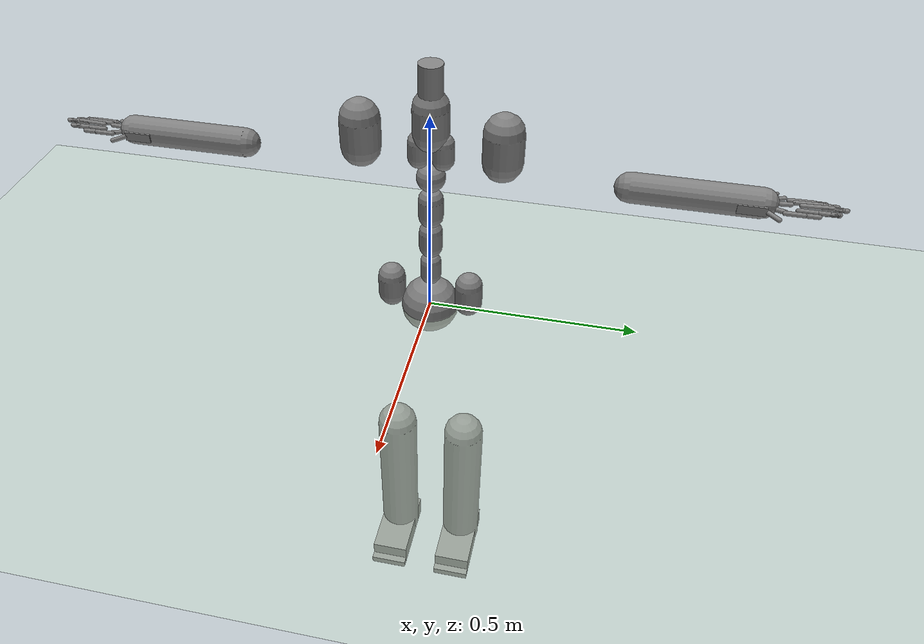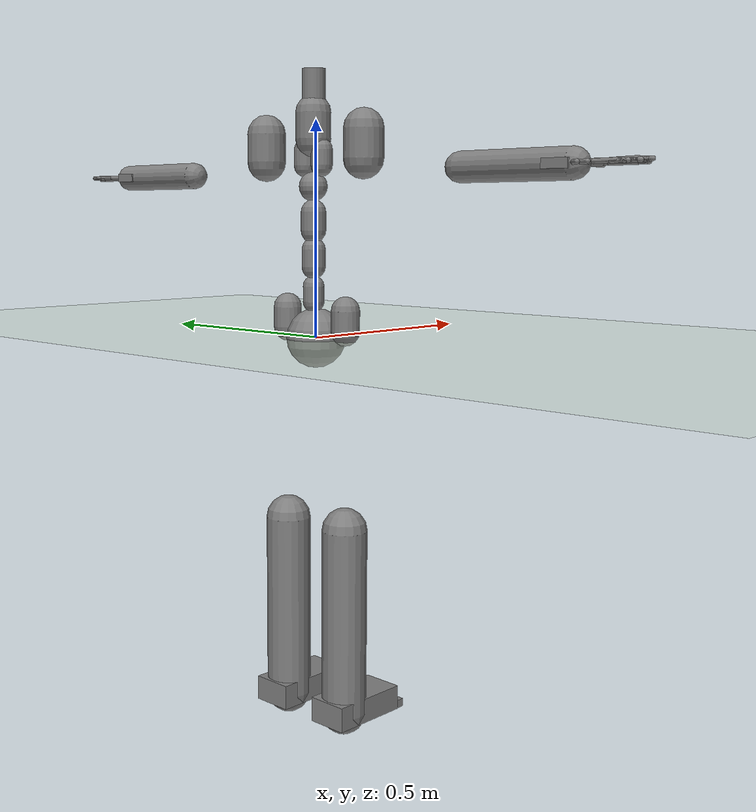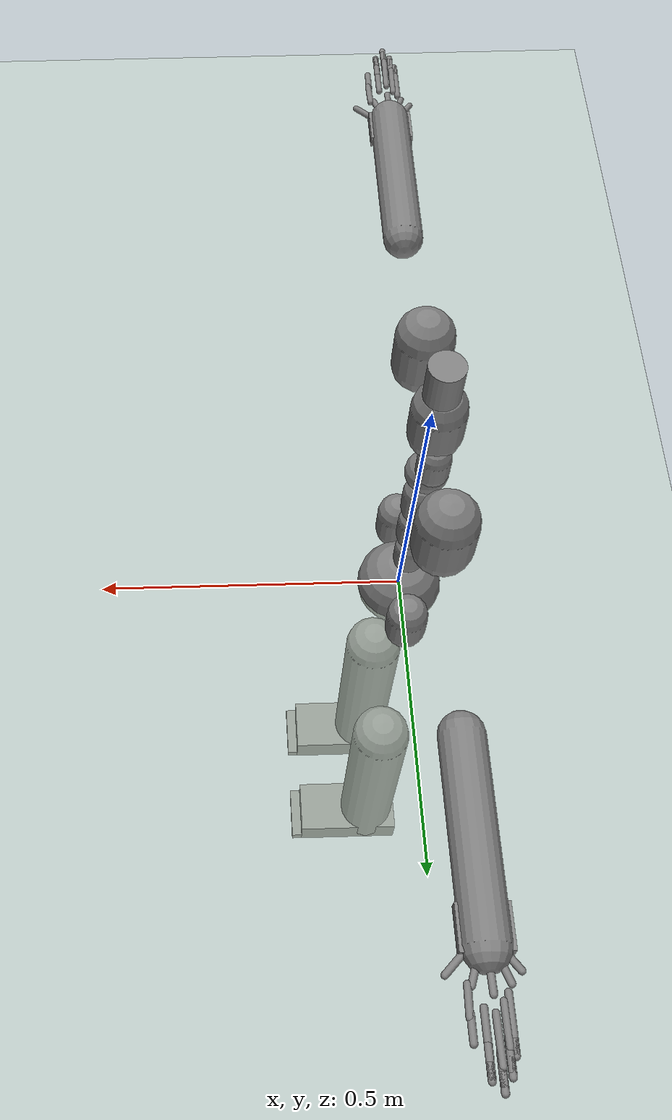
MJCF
<?xml version="1.0" ?>
<mujoco model="humanoid">
  <compiler coordinate="local"/>
  <statistic extent="2" center="0 0 1"/>
  <option timestep="0.00555"/>
  <default>
    <motor ctrlrange="-1 1" ctrllimited="true"/>
    <geom type="capsule" condim="1" friction="1.0 0.05 0.05" solimp=".9 .99 .003" solref=".015 1"/>
    <joint type="hinge" damping="0.1" stiffness="5" armature=".007" limited="true" solimplimit="0 .99 .01"/>
    <site size=".04" group="3"/>
  </default>
  <asset>
    <texture type="skybox" builtin="gradient" rgb1=".4 .5 .6" rgb2="0 0 0" width="100" height="100"/>
    <texture builtin="flat" height="1278" mark="cross" markrgb="1 1 1" name="texgeom" random="0.01" rgb1="0.8 0.6 0.4" rgb2="0.8 0.6 0.4" type="cube" width="127"/>
    <texture builtin="checker" height="100" name="texplane" rgb1="0 0 0" rgb2="0.8 0.8 0.8" type="2d" width="100"/>
    <material name="MatPlane" reflectance="0.5" shininess="1" specular="1" texrepeat="60 60" texture="texplane"/>
    <material name="geom" texture="texgeom" texuniform="true"/>
  </asset>
  <worldbody>
    <light cutoff="100" diffuse="1 1 1" dir="-0 0 -1.3" directional="true" exponent="1" pos="0 0 1.3" specular=".1 .1 .1"/>
    <geom conaffinity="1" condim="3" name="floor" pos="0 0 0" rgba="0.8 0.9 0.8 1" size="100 100 .2" type="plane" material="MatPlane"/>
    <body name="pHipOrigin" pos="0 0 0">
      <freejoint name="pHipOrigin"/>
      <geom type="sphere" contype="1" conaffinity="1" density="4629.6296296296305" size="0.06984" pos="0.0000 0.0000 -0.0000"/>
      <body name="jL5S1" pos="-0.00787041 0 0.07083349">
        <geom type="capsule" contype="1" conaffinity="1" density="1000" fromto="0 0 0.01425 0 0 0.04989" size="0.02494"/>
        <joint name="jL5S1_x" type="hinge" pos="0 0 0" axis="1 0 0" stiffness="500" damping="500" armature="0.02" range="-180.0000 180.0000"/>
        <joint name="jL5S1_y" type="hinge" pos="0 0 0" axis="0 1 0" stiffness="500" damping="500" armature="0.02" range="-180.0000 180.0000"/>
        <joint name="jL5S1_z" type="hinge" pos="0 0 0" axis="0 0 1" stiffness="500" damping="500" armature="0.02" range="-180.0000 180.0000"/>
        <body name="jL4L3" pos="0 0 0.07917343">
          <geom type="capsule" contype="1" conaffinity="1" density="1000" fromto="0 0 0.01583 0 0 0.05542" size="0.02771"/>
          <joint name="jL4L3_x" type="hinge" pos="0 0 0" axis="1 0 0" stiffness="500" damping="500" armature="0.02" range="-180.0000 180.0000"/>
          <joint name="jL4L3_y" type="hinge" pos="0 0 0" axis="0 1 0" stiffness="500" damping="500" armature="0.02" range="-180.0000 180.0000"/>
          <joint name="jL4L3_z" type="hinge" pos="0 0 0" axis="0 0 1" stiffness="500" damping="500" armature="0.02" range="-180.0000 180.0000"/>
          <body name="jL1T12" pos="-0.00064086 0 0.08306667">
            <geom type="capsule" contype="1" conaffinity="1" density="1000" fromto="0 0 0.01661 0 0 0.05815" size="0.02907"/>
            <joint name="jL1T12_x" type="hinge" pos="0 0 0" axis="1 0 0" stiffness="500" damping="500" armature="0.02" range="-180.0000 180.0000"/>
            <joint name="jL1T12_y" type="hinge" pos="0 0 0" axis="0 1 0" stiffness="500" damping="500" armature="0.02" range="-180.0000 180.0000"/>
            <joint name="jL1T12_z" type="hinge" pos="0 0 0" axis="0 0 1" stiffness="500" damping="500" armature="0.02" range="-180.0000 180.0000"/>
            <body name="jT9T8" pos="-0.00064135 0 0.08296934">
              <geom type="sphere" contype="1" conaffinity="1" density="1000" size="0.03319" pos="0.000 0.0000 0.033189"/>
              <joint name="jT9T8_x" type="hinge" pos="0 0 0" axis="1 0 0" stiffness="500" damping="500" armature="0.02" range="-180.0000 180.0000"/>
              <joint name="jT9T8_y" type="hinge" pos="0 0 0" axis="0 1 0" stiffness="500" damping="500" armature="0.02" range="-180.0000 180.0000"/>
              <joint name="jT9T8_z" type="hinge" pos="0 0 0" axis="0 0 1" stiffness="500" damping="500" armature="0.02" range="-180.0000 180.0000"/>
              <body name="jT1C7" pos="0 0 0.11661401">
                <geom type="capsule" contype="1" conaffinity="1" density="1000" fromto="0 0 0.02332 0 0 0.08163" size="0.04081"/>
                <joint name="jT1C7_x" type="hinge" pos="0 0 0" axis="1 0 0" stiffness="500" damping="500" armature="0.02" range="-180.0000 180.0000"/>
                <joint name="jT1C7_y" type="hinge" pos="0 0 0" axis="0 1 0" stiffness="500" damping="500" armature="0.02" range="-180.0000 180.0000"/>
                <joint name="jT1C7_z" type="hinge" pos="0 0 0" axis="0 0 1" stiffness="500" damping="500" armature="0.02" range="-180.0000 180.0000"/>
                <body name="jC1Head" pos="0.00105500 0 0.08942446">
                  <geom type="cylinder" contype="1" conaffinity="1" density="1000" fromto="0 0 0 0 0 0.08943" size="0.02683"/>
                  <joint name="jC1Head_x" type="hinge" pos="0 0 0" axis="1 0 0" stiffness="500" damping="500" armature="0.02" range="-180.0000 180.0000"/>
                  <joint name="jC1Head_y" type="hinge" pos="0 0 0" axis="0 1 0" stiffness="500" damping="500" armature="0.02" range="-180.0000 180.0000"/>
                  <joint name="jC1Head_z" type="hinge" pos="0 0 0" axis="0 0 1" stiffness="500" damping="500" armature="0.02" range="-180.0000 180.0000"/>
                </body>
              </body>
              <body name="jRightT4Shoulder" pos="0 -0.02701748 0.06587455">
                <geom type="capsule" contype="1" conaffinity="1" density="1000" fromto="0 0 0.01424 0 0 0.04984" size="0.02492"/>
                <joint name="jRightT4Shoulder_x" type="hinge" pos="0 0 0" axis="1 0 0" stiffness="500" damping="500" armature="0.02" range="-180.0000 180.0000"/>
                <joint name="jRightT4Shoulder_y" type="hinge" pos="0 0 0" axis="0 1 0" stiffness="500" damping="500" armature="0.02" range="-180.0000 180.0000"/>
                <joint name="jRightT4Shoulder_z" type="hinge" pos="0 0 0" axis="0 0 1" stiffness="500" damping="500" armature="0.02" range="-180.0000 180.0000"/>
                <body name="jRightShoulder" pos="0 -0.12938206 0">
                  <geom type="capsule" contype="1" conaffinity="1" density="1000" fromto="0 0 0.02588 0 0 0.09057" size="0.04528"/>
                  <joint name="jRightShoulder_x" type="hinge" pos="0 0 0" axis="1 0 0" stiffness="500" damping="500" armature="0.02" range="-180.0000 180.0000"/>
                  <joint name="jRightShoulder_y" type="hinge" pos="0 0 0" axis="0 1 0" stiffness="500" damping="500" armature="0.02" range="-180.0000 180.0000"/>
                  <joint name="jRightShoulder_z" type="hinge" pos="0 0 0" axis="0 0 1" stiffness="500" damping="500" armature="0.02" range="-180.0000 180.0000"/>
                  <body name="jRightElbow" pos="0 -0.26952463 0">
                    <geom type="capsule" contype="1" conaffinity="1" density="1000" fromto="0 0 0 0.00000000 -0.26952463 0.00000000" size="0.03234"/>
                    <joint name="jRightElbow_x" type="hinge" pos="0 0 0" axis="1 0 0" stiffness="500" damping="500" armature="0.02" range="-180.0000 180.0000"/>
                    <joint name="jRightElbow_y" type="hinge" pos="0 0 0" axis="0 1 0" stiffness="500" damping="500" armature="0.02" range="-180.0000 180.0000"/>
                    <joint name="jRightElbow_z" type="hinge" pos="0 0 0" axis="0 0 1" stiffness="500" damping="500" armature="0.02" range="-180.0000 180.0000"/>
                    <body name="jRightWrist" pos="0.00009974 -0.24782105 0">
                      <geom density="1000" type="box" pos="0 0 0" size="0.035 0.03 0.01" quat="1.0000 0.0000 0.0000 0.0000"/>
                      <joint name="jRightWrist_x" type="hinge" pos="0 0 0" axis="1 0 0" stiffness="500" damping="500" armature="0.02" range="-180.0000 180.0000"/>
                      <joint name="jRightWrist_y" type="hinge" pos="0 0 0" axis="0 1 0" stiffness="500" damping="500" armature="0.02" range="-180.0000 180.0000"/>
                      <joint name="jRightWrist_z" type="hinge" pos="0 0 0" axis="0 0 1" stiffness="500" damping="500" armature="0.02" range="-180.0000 180.0000"/>
                      <body name="jRightFirstCMC" pos="0.02718432 -0.02605770 -0.00123107">
                        <geom type="capsule" contype="1" conaffinity="1" density="1000" fromto="0 0 0 0.02718432 -0.02605770 -0.00123107" size="0.005"/>
                        <joint name="jRightFirstCMC_x" type="hinge" pos="0 0 0" axis="1 0 0" stiffness="500" damping="500" armature="0.02" range="-180.0000 180.0000"/>
                        <joint name="jRightFirstCMC_y" type="hinge" pos="0 0 0" axis="0 1 0" stiffness="500" damping="500" armature="0.02" range="-180.0000 180.0000"/>
                        <joint name="jRightFirstCMC_z" type="hinge" pos="0 0 0" axis="0 0 1" stiffness="500" damping="500" armature="0.02" range="-180.0000 180.0000"/>
                        <body name="jRightFirstMCP" pos="0.00135433 -0.03821817 0.00080755">
                          <geom type="capsule" contype="1" conaffinity="1" density="1000" fromto="0 0 0 0.00135433 -0.03821817 0.00080755" size="0.005"/>
                          <joint name="jRightFirstMCP_x" type="hinge" pos="0 0 0" axis="1 0 0" stiffness="500" damping="500" armature="0.02" range="-180.0000 180.0000"/>
                          <joint name="jRightFirstMCP_y" type="hinge" pos="0 0 0" axis="0 1 0" stiffness="500" damping="500" armature="0.02" range="-180.0000 180.0000"/>
                          <joint name="jRightFirstMCP_z" type="hinge" pos="0 0 0" axis="0 0 1" stiffness="500" damping="500" armature="0.02" range="-180.0000 180.0000"/>
                          <body name="jRightIP" pos="0 -0.03357258 0">
                            <geom type="capsule" contype="1" conaffinity="1" density="1000" fromto="0 0 0 0.00000000 -0.03357258 0.00000000" size="0.005"/>
                            <joint name="jRightIP_x" type="hinge" pos="0 0 0" axis="1 0 0" stiffness="500" damping="500" armature="0.02" range="-180.0000 180.0000"/>
                            <joint name="jRightIP_y" type="hinge" pos="0 0 0" axis="0 1 0" stiffness="500" damping="500" armature="0.02" range="-180.0000 180.0000"/>
                            <joint name="jRightIP_z" type="hinge" pos="0 0 0" axis="0 0 1" stiffness="500" damping="500" armature="0.02" range="-180.0000 180.0000"/>
                          </body>
                        </body>
                      </body>
                      <body name="jRightSecondCMC" pos="0.01153945 -0.03371460 -0.00058806">
                        <geom type="capsule" contype="1" conaffinity="1" density="1000" fromto="0 0 0 0.01153945 -0.03371460 -0.00058806" size="0.005"/>
                        <joint name="jRightSecondCMC_x" type="hinge" pos="0 0 0" axis="1 0 0" stiffness="500" damping="500" armature="0.02" range="-180.0000 180.0000"/>
                        <joint name="jRightSecondCMC_y" type="hinge" pos="0 0 0" axis="0 1 0" stiffness="500" damping="500" armature="0.02" range="-180.0000 180.0000"/>
                        <joint name="jRightSecondCMC_z" type="hinge" pos="0 0 0" axis="0 0 1" stiffness="500" damping="500" armature="0.02" range="-180.0000 180.0000"/>
                        <body name="jRightSecondMCP" pos="-0.00036596 -0.05836865 -0.00060548">
                          <geom type="capsule" contype="1" conaffinity="1" density="1000" fromto="0 0 0 -0.00036596 -0.05836865 -0.00060548" size="0.005"/>
                          <joint name="jRightSecondMCP_x" type="hinge" pos="0 0 0" axis="1 0 0" stiffness="500" damping="500" armature="0.02" range="-180.0000 180.0000"/>
                          <joint name="jRightSecondMCP_y" type="hinge" pos="0 0 0" axis="0 1 0" stiffness="500" damping="500" armature="0.02" range="-180.0000 180.0000"/>
                          <joint name="jRightSecondMCP_z" type="hinge" pos="0 0 0" axis="0 0 1" stiffness="500" damping="500" armature="0.02" range="-180.0000 180.0000"/>
                          <body name="jRightSecondPIP" pos="0 -0.04060539 0">
                            <geom type="capsule" contype="1" conaffinity="1" density="1000" fromto="0 0 0 0.00000000 -0.04060539 0.00000000" size="0.005"/>
                            <joint name="jRightSecondPIP_x" type="hinge" pos="0 0 0" axis="1 0 0" stiffness="500" damping="500" armature="0.02" range="-180.0000 180.0000"/>
                            <joint name="jRightSecondPIP_y" type="hinge" pos="0 0 0" axis="0 1 0" stiffness="500" damping="500" armature="0.02" range="-180.0000 180.0000"/>
                            <joint name="jRightSecondPIP_z" type="hinge" pos="0 0 0" axis="0 0 1" stiffness="500" damping="500" armature="0.02" range="-180.0000 180.0000"/>
                            <body name="jRightSecondDIP" pos="0 -0.01983708 0">
                              <geom type="capsule" contype="1" conaffinity="1" density="1000" fromto="0 0 0 0.00000000 -0.01983708 0.00000000" size="0.005"/>
                              <joint name="jRightSecondDIP_x" type="hinge" pos="0 0 0" axis="1 0 0" stiffness="500" damping="500" armature="0.02" range="-180.0000 180.0000"/>
                              <joint name="jRightSecondDIP_y" type="hinge" pos="0 0 0" axis="0 1 0" stiffness="500" damping="500" armature="0.02" range="-180.0000 180.0000"/>
                              <joint name="jRightSecondDIP_z" type="hinge" pos="0 0 0" axis="0 0 1" stiffness="500" damping="500" armature="0.02" range="-180.0000 180.0000"/>
                            </body>
                          </body>
                        </body>
                      </body>
                      <body name="jRightThirdCMC" pos="-0.00072275 -0.03908487 0.00164319">
                        <geom type="capsule" contype="1" conaffinity="1" density="1000" fromto="0 0 0 -0.00072275 -0.03908487 0.00164319" size="0.005"/>
                        <joint name="jRightThirdCMC_x" type="hinge" pos="0 0 0" axis="1 0 0" stiffness="500" damping="500" armature="0.02" range="-180.0000 180.0000"/>
                        <joint name="jRightThirdCMC_y" type="hinge" pos="0 0 0" axis="0 1 0" stiffness="500" damping="500" armature="0.02" range="-180.0000 180.0000"/>
                        <joint name="jRightThirdCMC_z" type="hinge" pos="0 0 0" axis="0 0 1" stiffness="500" damping="500" armature="0.02" range="-180.0000 180.0000"/>
                        <body name="jRightThirdMCP" pos="-0.00072406 -0.05998887 0.00163207">
                          <geom type="capsule" contype="1" conaffinity="1" density="1000" fromto="0 0 0 -0.00072406 -0.05998887 0.00163207" size="0.005"/>
                          <joint name="jRightThirdMCP_x" type="hinge" pos="0 0 0" axis="1 0 0" stiffness="500" damping="500" armature="0.02" range="-180.0000 180.0000"/>
                          <joint name="jRightThirdMCP_y" type="hinge" pos="0 0 0" axis="0 1 0" stiffness="500" damping="500" armature="0.02" range="-180.0000 180.0000"/>
                          <joint name="jRightThirdMCP_z" type="hinge" pos="0 0 0" axis="0 0 1" stiffness="500" damping="500" armature="0.02" range="-180.0000 180.0000"/>
                          <body name="jRightThirdPIP" pos="0 -0.04112494 0">
                            <geom type="capsule" contype="1" conaffinity="1" density="1000" fromto="0 0 0 0.00000000 -0.04112494 0.00000000" size="0.005"/>
                            <joint name="jRightThirdPIP_x" type="hinge" pos="0 0 0" axis="1 0 0" stiffness="500" damping="500" armature="0.02" range="-180.0000 180.0000"/>
                            <joint name="jRightThirdPIP_y" type="hinge" pos="0 0 0" axis="0 1 0" stiffness="500" damping="500" armature="0.02" range="-180.0000 180.0000"/>
                            <joint name="jRightThirdPIP_z" type="hinge" pos="0 0 0" axis="0 0 1" stiffness="500" damping="500" armature="0.02" range="-180.0000 180.0000"/>
                            <body name="jRightThirdDIP" pos="0 -0.02348156 0">
                              <geom type="capsule" contype="1" conaffinity="1" density="1000" fromto="0 0 0 0.00000000 -0.02348156 0.00000000" size="0.005"/>
                              <joint name="jRightThirdDIP_x" type="hinge" pos="0 0 0" axis="1 0 0" stiffness="500" damping="500" armature="0.02" range="-180.0000 180.0000"/>
                              <joint name="jRightThirdDIP_y" type="hinge" pos="0 0 0" axis="0 1 0" stiffness="500" damping="500" armature="0.02" range="-180.0000 180.0000"/>
                              <joint name="jRightThirdDIP_z" type="hinge" pos="0 0 0" axis="0 0 1" stiffness="500" damping="500" armature="0.02" range="-180.0000 180.0000"/>
                            </body>
                          </body>
                        </body>
                      </body>
                      <body name="jRightFourthCMC" pos="-0.01199957 -0.03342079 0.00078667">
                        <geom type="capsule" contype="1" conaffinity="1" density="1000" fromto="0 0 0 -0.01199957 -0.03342079 0.00078667" size="0.005"/>
                        <joint name="jRightFourthCMC_x" type="hinge" pos="0 0 0" axis="1 0 0" stiffness="500" damping="500" armature="0.02" range="-180.0000 180.0000"/>
                        <joint name="jRightFourthCMC_y" type="hinge" pos="0 0 0" axis="0 1 0" stiffness="500" damping="500" armature="0.02" range="-180.0000 180.0000"/>
                        <joint name="jRightFourthCMC_z" type="hinge" pos="0 0 0" axis="0 0 1" stiffness="500" damping="500" armature="0.02" range="-180.0000 180.0000"/>
                        <body name="jRightFourthMCP" pos="-0.00038448 -0.05269627 0.00082790">
                          <geom type="capsule" contype="1" conaffinity="1" density="1000" fromto="0 0 0 -0.00038448 -0.05269627 0.00082790" size="0.005"/>
                          <joint name="jRightFourthMCP_x" type="hinge" pos="0 0 0" axis="1 0 0" stiffness="500" damping="500" armature="0.02" range="-180.0000 180.0000"/>
                          <joint name="jRightFourthMCP_y" type="hinge" pos="0 0 0" axis="0 1 0" stiffness="500" damping="500" armature="0.02" range="-180.0000 180.0000"/>
                          <joint name="jRightFourthMCP_z" type="hinge" pos="0 0 0" axis="0 0 1" stiffness="500" damping="500" armature="0.02" range="-180.0000 180.0000"/>
                          <body name="jRightFourthPIP" pos="0 -0.03950550 0">
                            <geom type="capsule" contype="1" conaffinity="1" density="1000" fromto="0 0 0 0.00000000 -0.03950550 0.00000000" size="0.005"/>
                            <joint name="jRightFourthPIP_x" type="hinge" pos="0 0 0" axis="1 0 0" stiffness="500" damping="500" armature="0.02" range="-180.0000 180.0000"/>
                            <joint name="jRightFourthPIP_y" type="hinge" pos="0 0 0" axis="0 1 0" stiffness="500" damping="500" armature="0.02" range="-180.0000 180.0000"/>
                            <joint name="jRightFourthPIP_z" type="hinge" pos="0 0 0" axis="0 0 1" stiffness="500" damping="500" armature="0.02" range="-180.0000 180.0000"/>
                            <body name="jRightFourthDIP" pos="0 -0.02236672 0">
                              <geom type="capsule" contype="1" conaffinity="1" density="1000" fromto="0 0 0 0.00000000 -0.02236672 0.00000000" size="0.005"/>
                              <joint name="jRightFourthDIP_x" type="hinge" pos="0 0 0" axis="1 0 0" stiffness="500" damping="500" armature="0.02" range="-180.0000 180.0000"/>
                              <joint name="jRightFourthDIP_y" type="hinge" pos="0 0 0" axis="0 1 0" stiffness="500" damping="500" armature="0.02" range="-180.0000 180.0000"/>
                              <joint name="jRightFourthDIP_z" type="hinge" pos="0 0 0" axis="0 0 1" stiffness="500" damping="500" armature="0.02" range="-180.0000 180.0000"/>
                            </body>
                          </body>
                        </body>
                      </body>
                      <body name="jRightFifthCMC" pos="-0.01890416 -0.02634080 0.00051962">
                        <geom type="capsule" contype="1" conaffinity="1" density="1000" fromto="0 0 0 -0.01890416 -0.02634080 0.00051962" size="0.005"/>
                        <joint name="jRightFifthCMC_x" type="hinge" pos="0 0 0" axis="1 0 0" stiffness="500" damping="500" armature="0.02" range="-180.0000 180.0000"/>
                        <joint name="jRightFifthCMC_y" type="hinge" pos="0 0 0" axis="0 1 0" stiffness="500" damping="500" armature="0.02" range="-180.0000 180.0000"/>
                        <joint name="jRightFifthCMC_z" type="hinge" pos="0 0 0" axis="0 0 1" stiffness="500" damping="500" armature="0.02" range="-180.0000 180.0000"/>
                        <body name="jRightFifthMCP" pos="-0.00000736 -0.04985693 0.00068609">
                          <geom type="capsule" contype="1" conaffinity="1" density="1000" fromto="0 0 0 -0.00000736 -0.04985693 0.00068609" size="0.005"/>
                          <joint name="jRightFifthMCP_x" type="hinge" pos="0 0 0" axis="1 0 0" stiffness="500" damping="500" armature="0.02" range="-180.0000 180.0000"/>
                          <joint name="jRightFifthMCP_y" type="hinge" pos="0 0 0" axis="0 1 0" stiffness="500" damping="500" armature="0.02" range="-180.0000 180.0000"/>
                          <joint name="jRightFifthMCP_z" type="hinge" pos="0 0 0" axis="0 0 1" stiffness="500" damping="500" armature="0.02" range="-180.0000 180.0000"/>
                          <body name="jRightFifthPIP" pos="0 -0.03509658 0">
                            <geom type="capsule" contype="1" conaffinity="1" density="1000" fromto="0 0 0 0.00000000 -0.03509658 0.00000000" size="0.005"/>
                            <joint name="jRightFifthPIP_x" type="hinge" pos="0 0 0" axis="1 0 0" stiffness="500" damping="500" armature="0.02" range="-180.0000 180.0000"/>
                            <joint name="jRightFifthPIP_y" type="hinge" pos="0 0 0" axis="0 1 0" stiffness="500" damping="500" armature="0.02" range="-180.0000 180.0000"/>
                            <joint name="jRightFifthPIP_z" type="hinge" pos="0 0 0" axis="0 0 1" stiffness="500" damping="500" armature="0.02" range="-180.0000 180.0000"/>
                            <body name="jRightFifthDIP" pos="0 -0.01817212 0">
                              <geom type="capsule" contype="1" conaffinity="1" density="1000" fromto="0 0 0 0.00000000 -0.01817212 0.00000000" size="0.005"/>
                              <joint name="jRightFifthDIP_x" type="hinge" pos="0 0 0" axis="1 0 0" stiffness="500" damping="500" armature="0.02" range="-180.0000 180.0000"/>
                              <joint name="jRightFifthDIP_y" type="hinge" pos="0 0 0" axis="0 1 0" stiffness="500" damping="500" armature="0.02" range="-180.0000 180.0000"/>
                              <joint name="jRightFifthDIP_z" type="hinge" pos="0 0 0" axis="0 0 1" stiffness="500" damping="500" armature="0.02" range="-180.0000 180.0000"/>
                            </body>
                          </body>
                        </body>
                      </body>
                    </body>
                  </body>
                </body>
              </body>
              <body name="jLeftT4Shoulder" pos="0 0.02719374 0.06630430">
                <geom type="capsule" contype="1" conaffinity="1" density="1000" fromto="0 0 0.01433 0 0 0.05016" size="0.02508"/>
                <joint name="jLeftT4Shoulder_x" type="hinge" pos="0 0 0" axis="1 0 0" stiffness="500" damping="500" armature="0.02" range="-180.0000 180.0000"/>
                <joint name="jLeftT4Shoulder_y" type="hinge" pos="0 0 0" axis="0 1 0" stiffness="500" damping="500" armature="0.02" range="-180.0000 180.0000"/>
                <joint name="jLeftT4Shoulder_z" type="hinge" pos="0 0 0" axis="0 0 1" stiffness="500" damping="500" armature="0.02" range="-180.0000 180.0000"/>
                <body name="jLeftShoulder" pos="0 0.12956539 0">
                  <geom type="capsule" contype="1" conaffinity="1" density="1000" fromto="0 0 0.02591 0 0 0.09070" size="0.04535"/>
                  <joint name="jLeftShoulder_x" type="hinge" pos="0 0 0" axis="1 0 0" stiffness="500" damping="500" armature="0.02" range="-180.0000 180.0000"/>
                  <joint name="jLeftShoulder_y" type="hinge" pos="0 0 0" axis="0 1 0" stiffness="500" damping="500" armature="0.02" range="-180.0000 180.0000"/>
                  <joint name="jLeftShoulder_z" type="hinge" pos="0 0 0" axis="0 0 1" stiffness="500" damping="500" armature="0.02" range="-180.0000 180.0000"/>
                  <body name="jLeftElbow" pos="0 0.27030092 0">
                    <geom type="capsule" contype="1" conaffinity="1" density="1000" fromto="0 0 0 0.00000000 0.27030092 0.00000000" size="0.03244"/>
                    <joint name="jLeftElbow_x" type="hinge" pos="0 0 0" axis="1 0 0" stiffness="500" damping="500" armature="0.02" range="-180.0000 180.0000"/>
                    <joint name="jLeftElbow_y" type="hinge" pos="0 0 0" axis="0 1 0" stiffness="500" damping="500" armature="0.02" range="-180.0000 180.0000"/>
                    <joint name="jLeftElbow_z" type="hinge" pos="0 0 0" axis="0 0 1" stiffness="500" damping="500" armature="0.02" range="-180.0000 180.0000"/>
                    <body name="jLeftWrist" pos="0.00009984 0.24805251 0">
                      <geom density="1000" type="box" pos="0 0 0" size="0.035 0.03 0.01" quat="1.0000 0.0000 0.0000 0.0000"/>
                      <joint name="jLeftWrist_x" type="hinge" pos="0 0 0" axis="1 0 0" stiffness="500" damping="500" armature="0.02" range="-180.0000 180.0000"/>
                      <joint name="jLeftWrist_y" type="hinge" pos="0 0 0" axis="0 1 0" stiffness="500" damping="500" armature="0.02" range="-180.0000 180.0000"/>
                      <joint name="jLeftWrist_z" type="hinge" pos="0 0 0" axis="0 0 1" stiffness="500" damping="500" armature="0.02" range="-180.0000 180.0000"/>
                      <body name="jLeftFirstCMC" pos="0.02660705 0.02666988 -0.00119084">
                        <geom type="capsule" contype="1" conaffinity="1" density="1000" fromto="0 0 0 0.02660705 0.02666988 -0.00119084" size="0.005"/>
                        <joint name="jLeftFirstCMC_x" type="hinge" pos="0 0 0" axis="1 0 0" stiffness="500" damping="500" armature="0.02" range="-180.0000 180.0000"/>
                        <joint name="jLeftFirstCMC_y" type="hinge" pos="0 0 0" axis="0 1 0" stiffness="500" damping="500" armature="0.02" range="-180.0000 180.0000"/>
                        <joint name="jLeftFirstCMC_z" type="hinge" pos="0 0 0" axis="0 0 1" stiffness="500" damping="500" armature="0.02" range="-180.0000 180.0000"/>
                        <body name="jLeftFirstMCP" pos="0.00134128 0.03821731 0.00078699">
                          <geom type="capsule" contype="1" conaffinity="1" density="1000" fromto="0 0 0 0.00134128 0.03821731 0.00078699" size="0.005"/>
                          <joint name="jLeftFirstMCP_x" type="hinge" pos="0 0 0" axis="1 0 0" stiffness="500" damping="500" armature="0.02" range="-180.0000 180.0000"/>
                          <joint name="jLeftFirstMCP_y" type="hinge" pos="0 0 0" axis="0 1 0" stiffness="500" damping="500" armature="0.02" range="-180.0000 180.0000"/>
                          <joint name="jLeftFirstMCP_z" type="hinge" pos="0 0 0" axis="0 0 1" stiffness="500" damping="500" armature="0.02" range="-180.0000 180.0000"/>
                          <body name="jLeftIP" pos="0 0.03357258 0">
                            <geom type="capsule" contype="1" conaffinity="1" density="1000" fromto="0 0 0 0.00000000 0.03357258 0.00000000" size="0.005"/>
                            <joint name="jLeftIP_x" type="hinge" pos="0 0 0" axis="1 0 0" stiffness="500" damping="500" armature="0.02" range="-180.0000 180.0000"/>
                            <joint name="jLeftIP_y" type="hinge" pos="0 0 0" axis="0 1 0" stiffness="500" damping="500" armature="0.02" range="-180.0000 180.0000"/>
                            <joint name="jLeftIP_z" type="hinge" pos="0 0 0" axis="0 0 1" stiffness="500" damping="500" armature="0.02" range="-180.0000 180.0000"/>
                          </body>
                        </body>
                      </body>
                      <body name="jLeftSecondCMC" pos="0.01167236 0.03365257 -0.00059292">
                        <geom type="capsule" contype="1" conaffinity="1" density="1000" fromto="0 0 0 0.01167236 0.03365257 -0.00059292" size="0.005"/>
                        <joint name="jLeftSecondCMC_x" type="hinge" pos="0 0 0" axis="1 0 0" stiffness="500" damping="500" armature="0.02" range="-180.0000 180.0000"/>
                        <joint name="jLeftSecondCMC_y" type="hinge" pos="0 0 0" axis="0 1 0" stiffness="500" damping="500" armature="0.02" range="-180.0000 180.0000"/>
                        <joint name="jLeftSecondCMC_z" type="hinge" pos="0 0 0" axis="0 0 1" stiffness="500" damping="500" armature="0.02" range="-180.0000 180.0000"/>
                        <body name="jLeftSecondMCP" pos="-0.00031910 0.05836985 -0.00061296">
                          <geom type="capsule" contype="1" conaffinity="1" density="1000" fromto="0 0 0 -0.00031910 0.05836985 -0.00061296" size="0.005"/>
                          <joint name="jLeftSecondMCP_x" type="hinge" pos="0 0 0" axis="1 0 0" stiffness="500" damping="500" armature="0.02" range="-180.0000 180.0000"/>
                          <joint name="jLeftSecondMCP_y" type="hinge" pos="0 0 0" axis="0 1 0" stiffness="500" damping="500" armature="0.02" range="-180.0000 180.0000"/>
                          <joint name="jLeftSecondMCP_z" type="hinge" pos="0 0 0" axis="0 0 1" stiffness="500" damping="500" armature="0.02" range="-180.0000 180.0000"/>
                          <body name="jLeftSecondPIP" pos="0 0.04060539 0">
                            <geom type="capsule" contype="1" conaffinity="1" density="1000" fromto="0 0 0 0.00000000 0.04060539 0.00000000" size="0.005"/>
                            <joint name="jLeftSecondPIP_x" type="hinge" pos="0 0 0" axis="1 0 0" stiffness="500" damping="500" armature="0.02" range="-180.0000 180.0000"/>
                            <joint name="jLeftSecondPIP_y" type="hinge" pos="0 0 0" axis="0 1 0" stiffness="500" damping="500" armature="0.02" range="-180.0000 180.0000"/>
                            <joint name="jLeftSecondPIP_z" type="hinge" pos="0 0 0" axis="0 0 1" stiffness="500" damping="500" armature="0.02" range="-180.0000 180.0000"/>
                            <body name="jLeftSecondDIP" pos="0 0.01983708 0">
                              <geom type="capsule" contype="1" conaffinity="1" density="1000" fromto="0 0 0 0.00000000 0.01983708 0.00000000" size="0.005"/>
                              <joint name="jLeftSecondDIP_x" type="hinge" pos="0 0 0" axis="1 0 0" stiffness="500" damping="500" armature="0.02" range="-180.0000 180.0000"/>
                              <joint name="jLeftSecondDIP_y" type="hinge" pos="0 0 0" axis="0 1 0" stiffness="500" damping="500" armature="0.02" range="-180.0000 180.0000"/>
                              <joint name="jLeftSecondDIP_z" type="hinge" pos="0 0 0" axis="0 0 1" stiffness="500" damping="500" armature="0.02" range="-180.0000 180.0000"/>
                            </body>
                          </body>
                        </body>
                      </body>
                      <body name="jLeftThirdCMC" pos="-0.00072700 0.03908838 0.00158841">
                        <geom type="capsule" contype="1" conaffinity="1" density="1000" fromto="0 0 0 -0.00072700 0.03908838 0.00158841" size="0.005"/>
                        <joint name="jLeftThirdCMC_x" type="hinge" pos="0 0 0" axis="1 0 0" stiffness="500" damping="500" armature="0.02" range="-180.0000 180.0000"/>
                        <joint name="jLeftThirdCMC_y" type="hinge" pos="0 0 0" axis="0 1 0" stiffness="500" damping="500" armature="0.02" range="-180.0000 180.0000"/>
                        <joint name="jLeftThirdCMC_z" type="hinge" pos="0 0 0" axis="0 0 1" stiffness="500" damping="500" armature="0.02" range="-180.0000 180.0000"/>
                        <body name="jLeftThirdMCP" pos="-0.00072991 0.05999004 0.00159926">
                          <geom type="capsule" contype="1" conaffinity="1" density="1000" fromto="0 0 0 -0.00072991 0.05999004 0.00159926" size="0.005"/>
                          <joint name="jLeftThirdMCP_x" type="hinge" pos="0 0 0" axis="1 0 0" stiffness="500" damping="500" armature="0.02" range="-180.0000 180.0000"/>
                          <joint name="jLeftThirdMCP_y" type="hinge" pos="0 0 0" axis="0 1 0" stiffness="500" damping="500" armature="0.02" range="-180.0000 180.0000"/>
                          <joint name="jLeftThirdMCP_z" type="hinge" pos="0 0 0" axis="0 0 1" stiffness="500" damping="500" armature="0.02" range="-180.0000 180.0000"/>
                          <body name="jLeftThirdPIP" pos="0 0.04112494 0">
                            <geom type="capsule" contype="1" conaffinity="1" density="1000" fromto="0 0 0 0.00000000 0.04112494 0.00000000" size="0.005"/>
                            <joint name="jLeftThirdPIP_x" type="hinge" pos="0 0 0" axis="1 0 0" stiffness="500" damping="500" armature="0.02" range="-180.0000 180.0000"/>
                            <joint name="jLeftThirdPIP_y" type="hinge" pos="0 0 0" axis="0 1 0" stiffness="500" damping="500" armature="0.02" range="-180.0000 180.0000"/>
                            <joint name="jLeftThirdPIP_z" type="hinge" pos="0 0 0" axis="0 0 1" stiffness="500" damping="500" armature="0.02" range="-180.0000 180.0000"/>
                            <body name="jLeftThirdDIP" pos="0 0.02348156 0">
                              <geom type="capsule" contype="1" conaffinity="1" density="1000" fromto="0 0 0 0.00000000 0.02348156 0.00000000" size="0.005"/>
                              <joint name="jLeftThirdDIP_x" type="hinge" pos="0 0 0" axis="1 0 0" stiffness="500" damping="500" armature="0.02" range="-180.0000 180.0000"/>
                              <joint name="jLeftThirdDIP_y" type="hinge" pos="0 0 0" axis="0 1 0" stiffness="500" damping="500" armature="0.02" range="-180.0000 180.0000"/>
                              <joint name="jLeftThirdDIP_z" type="hinge" pos="0 0 0" axis="0 0 1" stiffness="500" damping="500" armature="0.02" range="-180.0000 180.0000"/>
                            </body>
                          </body>
                        </body>
                      </body>
                      <body name="jLeftFourthCMC" pos="-0.01243988 0.03324984 0.00083977">
                        <geom type="capsule" contype="1" conaffinity="1" density="1000" fromto="0 0 0 -0.01243988 0.03324984 0.00083977" size="0.005"/>
                        <joint name="jLeftFourthCMC_x" type="hinge" pos="0 0 0" axis="1 0 0" stiffness="500" damping="500" armature="0.02" range="-180.0000 180.0000"/>
                        <joint name="jLeftFourthCMC_y" type="hinge" pos="0 0 0" axis="0 1 0" stiffness="500" damping="500" armature="0.02" range="-180.0000 180.0000"/>
                        <joint name="jLeftFourthCMC_z" type="hinge" pos="0 0 0" axis="0 0 1" stiffness="500" damping="500" armature="0.02" range="-180.0000 180.0000"/>
                        <body name="jLeftFourthMCP" pos="-0.00041347 0.05269325 0.00087560">
                          <geom type="capsule" contype="1" conaffinity="1" density="1000" fromto="0 0 0 -0.00041347 0.05269325 0.00087560" size="0.005"/>
                          <joint name="jLeftFourthMCP_x" type="hinge" pos="0 0 0" axis="1 0 0" stiffness="500" damping="500" armature="0.02" range="-180.0000 180.0000"/>
                          <joint name="jLeftFourthMCP_y" type="hinge" pos="0 0 0" axis="0 1 0" stiffness="500" damping="500" armature="0.02" range="-180.0000 180.0000"/>
                          <joint name="jLeftFourthMCP_z" type="hinge" pos="0 0 0" axis="0 0 1" stiffness="500" damping="500" armature="0.02" range="-180.0000 180.0000"/>
                          <body name="jLeftFourthPIP" pos="0 0.03950550 0">
                            <geom type="capsule" contype="1" conaffinity="1" density="1000" fromto="0 0 0 0.00000000 0.03950550 0.00000000" size="0.005"/>
                            <joint name="jLeftFourthPIP_x" type="hinge" pos="0 0 0" axis="1 0 0" stiffness="500" damping="500" armature="0.02" range="-180.0000 180.0000"/>
                            <joint name="jLeftFourthPIP_y" type="hinge" pos="0 0 0" axis="0 1 0" stiffness="500" damping="500" armature="0.02" range="-180.0000 180.0000"/>
                            <joint name="jLeftFourthPIP_z" type="hinge" pos="0 0 0" axis="0 0 1" stiffness="500" damping="500" armature="0.02" range="-180.0000 180.0000"/>
                            <body name="jLeftFourthDIP" pos="0 0.02236672 0">
                              <geom type="capsule" contype="1" conaffinity="1" density="1000" fromto="0 0 0 0.00000000 0.02236672 0.00000000" size="0.005"/>
                              <joint name="jLeftFourthDIP_x" type="hinge" pos="0 0 0" axis="1 0 0" stiffness="500" damping="500" armature="0.02" range="-180.0000 180.0000"/>
                              <joint name="jLeftFourthDIP_y" type="hinge" pos="0 0 0" axis="0 1 0" stiffness="500" damping="500" armature="0.02" range="-180.0000 180.0000"/>
                              <joint name="jLeftFourthDIP_z" type="hinge" pos="0 0 0" axis="0 0 1" stiffness="500" damping="500" armature="0.02" range="-180.0000 180.0000"/>
                            </body>
                          </body>
                        </body>
                      </body>
                      <body name="jLeftFifthCMC" pos="-0.01947684 0.02592437 0.00052797">
                        <geom type="capsule" contype="1" conaffinity="1" density="1000" fromto="0 0 0 -0.01947684 0.02592437 0.00052797" size="0.005"/>
                        <joint name="jLeftFifthCMC_x" type="hinge" pos="0 0 0" axis="1 0 0" stiffness="500" damping="500" armature="0.02" range="-180.0000 180.0000"/>
                        <joint name="jLeftFifthCMC_y" type="hinge" pos="0 0 0" axis="0 1 0" stiffness="500" damping="500" armature="0.02" range="-180.0000 180.0000"/>
                        <joint name="jLeftFifthCMC_z" type="hinge" pos="0 0 0" axis="0 0 1" stiffness="500" damping="500" armature="0.02" range="-180.0000 180.0000"/>
                        <body name="jLeftFifthMCP" pos="-0.00001414 0.04985557 0.00071739">
                          <geom type="capsule" contype="1" conaffinity="1" density="1000" fromto="0 0 0 -0.00001414 0.04985557 0.00071739" size="0.005"/>
                          <joint name="jLeftFifthMCP_x" type="hinge" pos="0 0 0" axis="1 0 0" stiffness="500" damping="500" armature="0.02" range="-180.0000 180.0000"/>
                          <joint name="jLeftFifthMCP_y" type="hinge" pos="0 0 0" axis="0 1 0" stiffness="500" damping="500" armature="0.02" range="-180.0000 180.0000"/>
                          <joint name="jLeftFifthMCP_z" type="hinge" pos="0 0 0" axis="0 0 1" stiffness="500" damping="500" armature="0.02" range="-180.0000 180.0000"/>
                          <body name="jLeftFifthPIP" pos="0 0.03509658 0">
                            <geom type="capsule" contype="1" conaffinity="1" density="1000" fromto="0 0 0 0.00000000 0.03509658 0.00000000" size="0.005"/>
                            <joint name="jLeftFifthPIP_x" type="hinge" pos="0 0 0" axis="1 0 0" stiffness="500" damping="500" armature="0.02" range="-180.0000 180.0000"/>
                            <joint name="jLeftFifthPIP_y" type="hinge" pos="0 0 0" axis="0 1 0" stiffness="500" damping="500" armature="0.02" range="-180.0000 180.0000"/>
                            <joint name="jLeftFifthPIP_z" type="hinge" pos="0 0 0" axis="0 0 1" stiffness="500" damping="500" armature="0.02" range="-180.0000 180.0000"/>
                            <body name="jLeftFifthDIP" pos="0 0.01817212 0">
                              <geom type="capsule" contype="1" conaffinity="1" density="1000" fromto="0 0 0 0.00000000 0.01817212 0.00000000" size="0.005"/>
                              <joint name="jLeftFifthDIP_x" type="hinge" pos="0 0 0" axis="1 0 0" stiffness="500" damping="500" armature="0.02" range="-180.0000 180.0000"/>
                              <joint name="jLeftFifthDIP_y" type="hinge" pos="0 0 0" axis="0 1 0" stiffness="500" damping="500" armature="0.02" range="-180.0000 180.0000"/>
                              <joint name="jLeftFifthDIP_z" type="hinge" pos="0 0 0" axis="0 0 1" stiffness="500" damping="500" armature="0.02" range="-180.0000 180.0000"/>
                            </body>
                          </body>
                        </body>
                      </body>
                    </body>
                  </body>
                </body>
              </body>
            </body>
          </body>
        </body>
      </body>
      <body name="jRightHip" pos="-0.00016020 -0.09506907 0.00144217">
        <geom type="capsule" contype="1" conaffinity="1" density="1000" fromto="0 0 0.01902 0 0 0.06656" size="0.03328"/>
        <joint name="jRightHip_x" type="hinge" pos="0 0 0" axis="1 0 0" stiffness="500" damping="500" armature="0.02" range="-180.0000 180.0000"/>
        <joint name="jRightHip_y" type="hinge" pos="0 0 0" axis="0 1 0" stiffness="500" damping="500" armature="0.02" range="-180.0000 180.0000"/>
        <joint name="jRightHip_z" type="hinge" pos="0 0 0" axis="0 0 1" stiffness="500" damping="500" armature="0.02" range="-180.0000 180.0000"/>
        <body name="jRightKnee" pos="0.00005371 0 -0.45044741">
          <geom type="capsule" contype="1" conaffinity="1" density="1000" fromto="0 0 0 0.00005371 0.00000000 -0.45044741" size="0.05405"/>
          <joint name="jRightKnee_x" type="hinge" pos="0 0 0" axis="1 0 0" stiffness="500" damping="500" armature="0.02" range="-180.0000 180.0000"/>
          <joint name="jRightKnee_y" type="hinge" pos="0 0 0" axis="0 1 0" stiffness="500" damping="500" armature="0.02" range="-180.0000 180.0000"/>
          <joint name="jRightKnee_z" type="hinge" pos="0 0 0" axis="0 0 1" stiffness="500" damping="500" armature="0.02" range="-180.0000 180.0000"/>
          <body name="jRightAnkle" pos="0.00046479 0 -0.41163184">
            <geom density="1000" type="box" pos="0.04 0. -0.03" size="0.1 0.05 0.03" quat="1.0 0 0 0"/>
            <joint name="jRightAnkle_x" type="hinge" pos="0 0 0" axis="1 0 0" stiffness="500" damping="500" armature="0.02" range="-180.0000 180.0000"/>
            <joint name="jRightAnkle_y" type="hinge" pos="0 0 0" axis="0 1 0" stiffness="500" damping="500" armature="0.02" range="-180.0000 180.0000"/>
            <joint name="jRightAnkle_z" type="hinge" pos="0 0 0" axis="0 0 1" stiffness="500" damping="500" armature="0.02" range="-180.0000 180.0000"/>
            <body name="jRightBallFoot" pos="0.14987361 0 -0.06875617">
              <geom density="1000" type="box" pos="0 0 0.02" size="0.01 0.05 0.01" quat="1.0 0 0 0"/>
              <joint name="jRightBallFoot_x" type="hinge" pos="0 0 0" axis="1 0 0" stiffness="500" damping="500" armature="0.02" range="-180.0000 180.0000"/>
              <joint name="jRightBallFoot_y" type="hinge" pos="0 0 0" axis="0 1 0" stiffness="500" damping="500" armature="0.02" range="-180.0000 180.0000"/>
              <joint name="jRightBallFoot_z" type="hinge" pos="0 0 0" axis="0 0 1" stiffness="500" damping="500" armature="0.02" range="-180.0000 180.0000"/>
            </body>
          </body>
        </body>
      </body>
      <body name="jLeftHip" pos="-0.00015830 0.09517248 0.00142464">
        <geom type="capsule" contype="1" conaffinity="1" density="1000" fromto="0 0 0.01904 0 0 0.06663" size="0.03331"/>
        <joint name="jLeftHip_x" type="hinge" pos="0 0 0" axis="1 0 0" stiffness="500" damping="500" armature="0.02" range="-180.0000 180.0000"/>
        <joint name="jLeftHip_y" type="hinge" pos="0 0 0" axis="0 1 0" stiffness="500" damping="500" armature="0.02" range="-180.0000 180.0000"/>
        <joint name="jLeftHip_z" type="hinge" pos="0 0 0" axis="0 0 1" stiffness="500" damping="500" armature="0.02" range="-180.0000 180.0000"/>
        <body name="jLeftKnee" pos="0.00005371 0 -0.45044806">
          <geom type="capsule" contype="1" conaffinity="1" density="1000" fromto="0 0 0 0.00005371 0.00000000 -0.45044806" size="0.05405"/>
          <joint name="jLeftKnee_x" type="hinge" pos="0 0 0" axis="1 0 0" stiffness="500" damping="500" armature="0.02" range="-180.0000 180.0000"/>
          <joint name="jLeftKnee_y" type="hinge" pos="0 0 0" axis="0 1 0" stiffness="500" damping="500" armature="0.02" range="-180.0000 180.0000"/>
          <joint name="jLeftKnee_z" type="hinge" pos="0 0 0" axis="0 0 1" stiffness="500" damping="500" armature="0.02" range="-180.0000 180.0000"/>
          <body name="jLeftAnkle" pos="0.00046479 0 -0.41163184">
            <geom density="1000" type="box" pos="0.04 0. -0.03" size="0.1 0.05 0.03" quat="1.0 0 0 0"/>
            <joint name="jLeftAnkle_x" type="hinge" pos="0 0 0" axis="1 0 0" stiffness="500" damping="500" armature="0.02" range="-180.0000 180.0000"/>
            <joint name="jLeftAnkle_y" type="hinge" pos="0 0 0" axis="0 1 0" stiffness="500" damping="500" armature="0.02" range="-180.0000 180.0000"/>
            <joint name="jLeftAnkle_z" type="hinge" pos="0 0 0" axis="0 0 1" stiffness="500" damping="500" armature="0.02" range="-180.0000 180.0000"/>
            <body name="jLeftBallFoot" pos="0.14987362 0 -0.06875618">
              <geom density="1000" type="box" pos="0 0 0.02" size="0.01 0.05 0.01" quat="1.0 0 0 0"/>
              <joint name="jLeftBallFoot_x" type="hinge" pos="0 0 0" axis="1 0 0" stiffness="500" damping="500" armature="0.02" range="-180.0000 180.0000"/>
              <joint name="jLeftBallFoot_y" type="hinge" pos="0 0 0" axis="0 1 0" stiffness="500" damping="500" armature="0.02" range="-180.0000 180.0000"/>
              <joint name="jLeftBallFoot_z" type="hinge" pos="0 0 0" axis="0 0 1" stiffness="500" damping="500" armature="0.02" range="-180.0000 180.0000"/>
            </body>
          </body>
        </body>
      </body>
    </body>
  </worldbody>
  <actuator>
    <motor name="jL5S1_x" joint="jL5S1_x" gear="500"/>
    <motor name="jL5S1_y" joint="jL5S1_y" gear="500"/>
    <motor name="jL5S1_z" joint="jL5S1_z" gear="500"/>
    <motor name="jL4L3_x" joint="jL4L3_x" gear="500"/>
    <motor name="jL4L3_y" joint="jL4L3_y" gear="500"/>
    <motor name="jL4L3_z" joint="jL4L3_z" gear="500"/>
    <motor name="jL1T12_x" joint="jL1T12_x" gear="500"/>
    <motor name="jL1T12_y" joint="jL1T12_y" gear="500"/>
    <motor name="jL1T12_z" joint="jL1T12_z" gear="500"/>
    <motor name="jT9T8_x" joint="jT9T8_x" gear="500"/>
    <motor name="jT9T8_y" joint="jT9T8_y" gear="500"/>
    <motor name="jT9T8_z" joint="jT9T8_z" gear="500"/>
    <motor name="jT1C7_x" joint="jT1C7_x" gear="500"/>
    <motor name="jT1C7_y" joint="jT1C7_y" gear="500"/>
    <motor name="jT1C7_z" joint="jT1C7_z" gear="500"/>
    <motor name="jC1Head_x" joint="jC1Head_x" gear="500"/>
    <motor name="jC1Head_y" joint="jC1Head_y" gear="500"/>
    <motor name="jC1Head_z" joint="jC1Head_z" gear="500"/>
    <motor name="jRightT4Shoulder_x" joint="jRightT4Shoulder_x" gear="500"/>
    <motor name="jRightT4Shoulder_y" joint="jRightT4Shoulder_y" gear="500"/>
    <motor name="jRightT4Shoulder_z" joint="jRightT4Shoulder_z" gear="500"/>
    <motor name="jRightShoulder_x" joint="jRightShoulder_x" gear="500"/>
    <motor name="jRightShoulder_y" joint="jRightShoulder_y" gear="500"/>
    <motor name="jRightShoulder_z" joint="jRightShoulder_z" gear="500"/>
    <motor name="jRightElbow_x" joint="jRightElbow_x" gear="500"/>
    <motor name="jRightElbow_y" joint="jRightElbow_y" gear="500"/>
    <motor name="jRightElbow_z" joint="jRightElbow_z" gear="500"/>
    <motor name="jRightWrist_x" joint="jRightWrist_x" gear="500"/>
    <motor name="jRightWrist_y" joint="jRightWrist_y" gear="500"/>
    <motor name="jRightWrist_z" joint="jRightWrist_z" gear="500"/>
    <motor name="jLeftT4Shoulder_x" joint="jLeftT4Shoulder_x" gear="500"/>
    <motor name="jLeftT4Shoulder_y" joint="jLeftT4Shoulder_y" gear="500"/>
    <motor name="jLeftT4Shoulder_z" joint="jLeftT4Shoulder_z" gear="500"/>
    <motor name="jLeftShoulder_x" joint="jLeftShoulder_x" gear="500"/>
    <motor name="jLeftShoulder_y" joint="jLeftShoulder_y" gear="500"/>
    <motor name="jLeftShoulder_z" joint="jLeftShoulder_z" gear="500"/>
    <motor name="jLeftElbow_x" joint="jLeftElbow_x" gear="500"/>
    <motor name="jLeftElbow_y" joint="jLeftElbow_y" gear="500"/>
    <motor name="jLeftElbow_z" joint="jLeftElbow_z" gear="500"/>
    <motor name="jLeftWrist_x" joint="jLeftWrist_x" gear="500"/>
    <motor name="jLeftWrist_y" joint="jLeftWrist_y" gear="500"/>
    <motor name="jLeftWrist_z" joint="jLeftWrist_z" gear="500"/>
    <motor name="jRightHip_x" joint="jRightHip_x" gear="500"/>
    <motor name="jRightHip_y" joint="jRightHip_y" gear="500"/>
    <motor name="jRightHip_z" joint="jRightHip_z" gear="500"/>
    <motor name="jRightKnee_x" joint="jRightKnee_x" gear="500"/>
    <motor name="jRightKnee_y" joint="jRightKnee_y" gear="500"/>
    <motor name="jRightKnee_z" joint="jRightKnee_z" gear="500"/>
    <motor name="jRightAnkle_x" joint="jRightAnkle_x" gear="500"/>
    <motor name="jRightAnkle_y" joint="jRightAnkle_y" gear="500"/>
    <motor name="jRightAnkle_z" joint="jRightAnkle_z" gear="500"/>
    <motor name="jRightBallFoot_x" joint="jRightBallFoot_x" gear="500"/>
    <motor name="jRightBallFoot_y" joint="jRightBallFoot_y" gear="500"/>
    <motor name="jRightBallFoot_z" joint="jRightBallFoot_z" gear="500"/>
    <motor name="jLeftHip_x" joint="jLeftHip_x" gear="500"/>
    <motor name="jLeftHip_y" joint="jLeftHip_y" gear="500"/>
    <motor name="jLeftHip_z" joint="jLeftHip_z" gear="500"/>
    <motor name="jLeftKnee_x" joint="jLeftKnee_x" gear="500"/>
    <motor name="jLeftKnee_y" joint="jLeftKnee_y" gear="500"/>
    <motor name="jLeftKnee_z" joint="jLeftKnee_z" gear="500"/>
    <motor name="jLeftAnkle_x" joint="jLeftAnkle_x" gear="500"/>
    <motor name="jLeftAnkle_y" joint="jLeftAnkle_y" gear="500"/>
    <motor name="jLeftAnkle_z" joint="jLeftAnkle_z" gear="500"/>
    <motor name="jLeftBallFoot_x" joint="jLeftBallFoot_x" gear="500"/>
    <motor name="jLeftBallFoot_y" joint="jLeftBallFoot_y" gear="500"/>
    <motor name="jLeftBallFoot_z" joint="jLeftBallFoot_z" gear="500"/>
    <motor name="jLeftFirstCMC_x" joint="jLeftFirstCMC_x" gear="500"/>
    <motor name="jLeftFirstCMC_y" joint="jLeftFirstCMC_y" gear="500"/>
    <motor name="jLeftFirstCMC_z" joint="jLeftFirstCMC_z" gear="500"/>
    <motor name="jLeftFirstMCP_x" joint="jLeftFirstMCP_x" gear="500"/>
    <motor name="jLeftFirstMCP_y" joint="jLeftFirstMCP_y" gear="500"/>
    <motor name="jLeftFirstMCP_z" joint="jLeftFirstMCP_z" gear="500"/>
    <motor name="jLeftIP_x" joint="jLeftIP_x" gear="500"/>
    <motor name="jLeftIP_y" joint="jLeftIP_y" gear="500"/>
    <motor name="jLeftIP_z" joint="jLeftIP_z" gear="500"/>
    <motor name="jLeftSecondCMC_x" joint="jLeftSecondCMC_x" gear="500"/>
    <motor name="jLeftSecondCMC_y" joint="jLeftSecondCMC_y" gear="500"/>
    <motor name="jLeftSecondCMC_z" joint="jLeftSecondCMC_z" gear="500"/>
    <motor name="jLeftSecondMCP_x" joint="jLeftSecondMCP_x" gear="500"/>
    <motor name="jLeftSecondMCP_y" joint="jLeftSecondMCP_y" gear="500"/>
    <motor name="jLeftSecondMCP_z" joint="jLeftSecondMCP_z" gear="500"/>
    <motor name="jLeftSecondPIP_x" joint="jLeftSecondPIP_x" gear="500"/>
    <motor name="jLeftSecondPIP_y" joint="jLeftSecondPIP_y" gear="500"/>
    <motor name="jLeftSecondPIP_z" joint="jLeftSecondPIP_z" gear="500"/>
    <motor name="jLeftSecondDIP_x" joint="jLeftSecondDIP_x" gear="500"/>
    <motor name="jLeftSecondDIP_y" joint="jLeftSecondDIP_y" gear="500"/>
    <motor name="jLeftSecondDIP_z" joint="jLeftSecondDIP_z" gear="500"/>
    <motor name="jLeftThirdCMC_x" joint="jLeftThirdCMC_x" gear="500"/>
    <motor name="jLeftThirdCMC_y" joint="jLeftThirdCMC_y" gear="500"/>
    <motor name="jLeftThirdCMC_z" joint="jLeftThirdCMC_z" gear="500"/>
    <motor name="jLeftThirdMCP_x" joint="jLeftThirdMCP_x" gear="500"/>
    <motor name="jLeftThirdMCP_y" joint="jLeftThirdMCP_y" gear="500"/>
    <motor name="jLeftThirdMCP_z" joint="jLeftThirdMCP_z" gear="500"/>
    <motor name="jLeftThirdPIP_x" joint="jLeftThirdPIP_x" gear="500"/>
    <motor name="jLeftThirdPIP_y" joint="jLeftThirdPIP_y" gear="500"/>
    <motor name="jLeftThirdPIP_z" joint="jLeftThirdPIP_z" gear="500"/>
    <motor name="jLeftThirdDIP_x" joint="jLeftThirdDIP_x" gear="500"/>
    <motor name="jLeftThirdDIP_y" joint="jLeftThirdDIP_y" gear="500"/>
    <motor name="jLeftThirdDIP_z" joint="jLeftThirdDIP_z" gear="500"/>
    <motor name="jLeftFourthCMC_x" joint="jLeftFourthCMC_x" gear="500"/>
    <motor name="jLeftFourthCMC_y" joint="jLeftFourthCMC_y" gear="500"/>
    <motor name="jLeftFourthCMC_z" joint="jLeftFourthCMC_z" gear="500"/>
    <motor name="jLeftFourthMCP_x" joint="jLeftFourthMCP_x" gear="500"/>
    <motor name="jLeftFourthMCP_y" joint="jLeftFourthMCP_y" gear="500"/>
    <motor name="jLeftFourthMCP_z" joint="jLeftFourthMCP_z" gear="500"/>
    <motor name="jLeftFourthPIP_x" joint="jLeftFourthPIP_x" gear="500"/>
    <motor name="jLeftFourthPIP_y" joint="jLeftFourthPIP_y" gear="500"/>
    <motor name="jLeftFourthPIP_z" joint="jLeftFourthPIP_z" gear="500"/>
    <motor name="jLeftFourthDIP_x" joint="jLeftFourthDIP_x" gear="500"/>
    <motor name="jLeftFourthDIP_y" joint="jLeftFourthDIP_y" gear="500"/>
    <motor name="jLeftFourthDIP_z" joint="jLeftFourthDIP_z" gear="500"/>
    <motor name="jLeftFifthCMC_x" joint="jLeftFifthCMC_x" gear="500"/>
    <motor name="jLeftFifthCMC_y" joint="jLeftFifthCMC_y" gear="500"/>
    <motor name="jLeftFifthCMC_z" joint="jLeftFifthCMC_z" gear="500"/>
    <motor name="jLeftFifthMCP_x" joint="jLeftFifthMCP_x" gear="500"/>
    <motor name="jLeftFifthMCP_y" joint="jLeftFifthMCP_y" gear="500"/>
    <motor name="jLeftFifthMCP_z" joint="jLeftFifthMCP_z" gear="500"/>
    <motor name="jLeftFifthPIP_x" joint="jLeftFifthPIP_x" gear="500"/>
    <motor name="jLeftFifthPIP_y" joint="jLeftFifthPIP_y" gear="500"/>
    <motor name="jLeftFifthPIP_z" joint="jLeftFifthPIP_z" gear="500"/>
    <motor name="jLeftFifthDIP_x" joint="jLeftFifthDIP_x" gear="500"/>
    <motor name="jLeftFifthDIP_y" joint="jLeftFifthDIP_y" gear="500"/>
    <motor name="jLeftFifthDIP_z" joint="jLeftFifthDIP_z" gear="500"/>
    <motor name="jRightFirstCMC_x" joint="jRightFirstCMC_x" gear="500"/>
    <motor name="jRightFirstCMC_y" joint="jRightFirstCMC_y" gear="500"/>
    <motor name="jRightFirstCMC_z" joint="jRightFirstCMC_z" gear="500"/>
    <motor name="jRightFirstMCP_x" joint="jRightFirstMCP_x" gear="500"/>
    <motor name="jRightFirstMCP_y" joint="jRightFirstMCP_y" gear="500"/>
    <motor name="jRightFirstMCP_z" joint="jRightFirstMCP_z" gear="500"/>
    <motor name="jRightIP_x" joint="jRightIP_x" gear="500"/>
    <motor name="jRightIP_y" joint="jRightIP_y" gear="500"/>
    <motor name="jRightIP_z" joint="jRightIP_z" gear="500"/>
    <motor name="jRightSecondCMC_x" joint="jRightSecondCMC_x" gear="500"/>
    <motor name="jRightSecondCMC_y" joint="jRightSecondCMC_y" gear="500"/>
    <motor name="jRightSecondCMC_z" joint="jRightSecondCMC_z" gear="500"/>
    <motor name="jRightSecondMCP_x" joint="jRightSecondMCP_x" gear="500"/>
    <motor name="jRightSecondMCP_y" joint="jRightSecondMCP_y" gear="500"/>
    <motor name="jRightSecondMCP_z" joint="jRightSecondMCP_z" gear="500"/>
    <motor name="jRightSecondPIP_x" joint="jRightSecondPIP_x" gear="500"/>
    <motor name="jRightSecondPIP_y" joint="jRightSecondPIP_y" gear="500"/>
    <motor name="jRightSecondPIP_z" joint="jRightSecondPIP_z" gear="500"/>
    <motor name="jRightSecondDIP_x" joint="jRightSecondDIP_x" gear="500"/>
    <motor name="jRightSecondDIP_y" joint="jRightSecondDIP_y" gear="500"/>
    <motor name="jRightSecondDIP_z" joint="jRightSecondDIP_z" gear="500"/>
    <motor name="jRightThirdCMC_x" joint="jRightThirdCMC_x" gear="500"/>
    <motor name="jRightThirdCMC_y" joint="jRightThirdCMC_y" gear="500"/>
    <motor name="jRightThirdCMC_z" joint="jRightThirdCMC_z" gear="500"/>
    <motor name="jRightThirdMCP_x" joint="jRightThirdMCP_x" gear="500"/>
    <motor name="jRightThirdMCP_y" joint="jRightThirdMCP_y" gear="500"/>
    <motor name="jRightThirdMCP_z" joint="jRightThirdMCP_z" gear="500"/>
    <motor name="jRightThirdPIP_x" joint="jRightThirdPIP_x" gear="500"/>
    <motor name="jRightThirdPIP_y" joint="jRightThirdPIP_y" gear="500"/>
    <motor name="jRightThirdPIP_z" joint="jRightThirdPIP_z" gear="500"/>
    <motor name="jRightThirdDIP_x" joint="jRightThirdDIP_x" gear="500"/>
    <motor name="jRightThirdDIP_y" joint="jRightThirdDIP_y" gear="500"/>
    <motor name="jRightThirdDIP_z" joint="jRightThirdDIP_z" gear="500"/>
    <motor name="jRightFourthCMC_x" joint="jRightFourthCMC_x" gear="500"/>
    <motor name="jRightFourthCMC_y" joint="jRightFourthCMC_y" gear="500"/>
    <motor name="jRightFourthCMC_z" joint="jRightFourthCMC_z" gear="500"/>
    <motor name="jRightFourthMCP_x" joint="jRightFourthMCP_x" gear="500"/>
    <motor name="jRightFourthMCP_y" joint="jRightFourthMCP_y" gear="500"/>
    <motor name="jRightFourthMCP_z" joint="jRightFourthMCP_z" gear="500"/>
    <motor name="jRightFourthPIP_x" joint="jRightFourthPIP_x" gear="500"/>
    <motor name="jRightFourthPIP_y" joint="jRightFourthPIP_y" gear="500"/>
    <motor name="jRightFourthPIP_z" joint="jRightFourthPIP_z" gear="500"/>
    <motor name="jRightFourthDIP_x" joint="jRightFourthDIP_x" gear="500"/>
    <motor name="jRightFourthDIP_y" joint="jRightFourthDIP_y" gear="500"/>
    <motor name="jRightFourthDIP_z" joint="jRightFourthDIP_z" gear="500"/>
    <motor name="jRightFifthCMC_x" joint="jRightFifthCMC_x" gear="500"/>
    <motor name="jRightFifthCMC_y" joint="jRightFifthCMC_y" gear="500"/>
    <motor name="jRightFifthCMC_z" joint="jRightFifthCMC_z" gear="500"/>
    <motor name="jRightFifthMCP_x" joint="jRightFifthMCP_x" gear="500"/>
    <motor name="jRightFifthMCP_y" joint="jRightFifthMCP_y" gear="500"/>
    <motor name="jRightFifthMCP_z" joint="jRightFifthMCP_z" gear="500"/>
    <motor name="jRightFifthPIP_x" joint="jRightFifthPIP_x" gear="500"/>
    <motor name="jRightFifthPIP_y" joint="jRightFifthPIP_y" gear="500"/>
    <motor name="jRightFifthPIP_z" joint="jRightFifthPIP_z" gear="500"/>
    <motor name="jRightFifthDIP_x" joint="jRightFifthDIP_x" gear="500"/>
    <motor name="jRightFifthDIP_y" joint="jRightFifthDIP_y" gear="500"/>
    <motor name="jRightFifthDIP_z" joint="jRightFifthDIP_z" gear="500"/>
  </actuator>
</mujoco>
